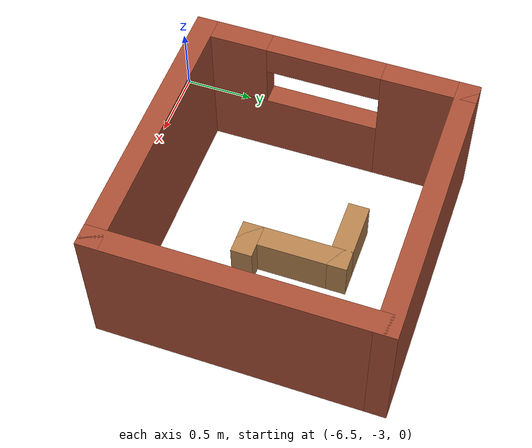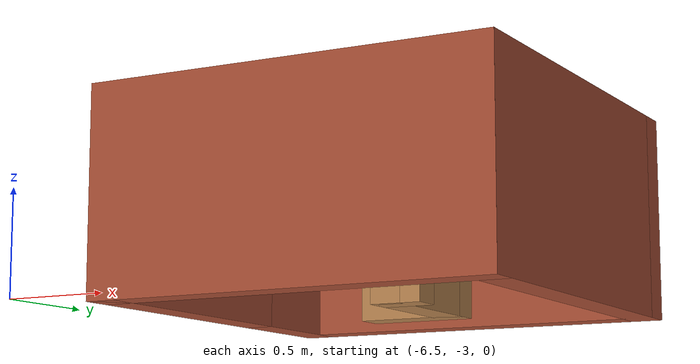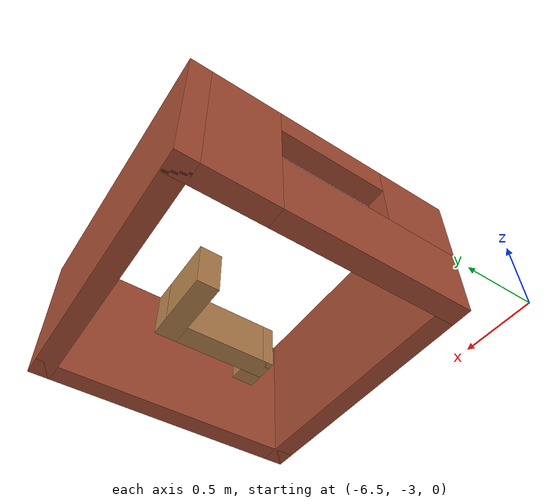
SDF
<?xml version='1.0'?>
<sdf version='1.6'>
  <model name='robot_world'>
    <pose frame=''>-5.263 -1.765 0 0 -0 0</pose>
    <link name='Wall_1'>
      <pose frame=''>-0.925 0 0 0 -0 -1.5708</pose>
      <visual name='Wall_1_Visual_0'>
        <pose frame=''>-0.675827 0 0.5 0 -0 0</pose>
        <geometry>
          <box>
            <size>0.647856 0.15 1</size>
          </box>
        </geometry>
        <material>
          <script>
            <uri>file://media/materials/scripts/gazebo.material</uri>
            <name>Gazebo/Bricks</name>
          </script>
          <ambient>1 1 1 1</ambient>
        </material>
        <meta>
          <layer>0</layer>
        </meta>
      </visual>
      <collision name='Wall_1_Collision_0'>
        <geometry>
          <box>
            <size>0.647856 0.15 1</size>
          </box>
        </geometry>
        <pose frame=''>-0.675827 0 0.5 0 -0 0</pose>
      </collision>
      <visual name='Wall_1_Visual_1'>
        <pose frame=''>0.323928 0 0.246 0 -0 0</pose>
        <geometry>
          <box>
            <size>1.35165 0.15 0.492</size>
          </box>
        </geometry>
        <material>
          <script>
            <uri>file://media/materials/scripts/gazebo.material</uri>
            <name>Gazebo/Bricks</name>
          </script>
          <ambient>1 1 1 1</ambient>
        </material>
        <meta>
          <layer>0</layer>
        </meta>
      </visual>
      <collision name='Wall_1_Collision_1'>
        <geometry>
          <box>
            <size>1.35165 0.15 0.492</size>
          </box>
        </geometry>
        <pose frame=''>0.323928 0 0.246 0 -0 0</pose>
      </collision>
      <visual name='Wall_1_Visual_2'>
        <pose frame=''>0.723928 0 0.746 0 -0 0</pose>
        <geometry>
          <box>
            <size>0.551654 0.15 0.508</size>
          </box>
        </geometry>
        <material>
          <script>
            <uri>file://media/materials/scripts/gazebo.material</uri>
            <name>Gazebo/Bricks</name>
          </script>
          <ambient>1 1 1 1</ambient>
        </material>
        <meta>
          <layer>0</layer>
        </meta>
      </visual>
      <collision name='Wall_1_Collision_2'>
        <geometry>
          <box>
            <size>0.551654 0.15 0.508</size>
          </box>
        </geometry>
        <pose frame=''>0.723928 0 0.746 0 -0 0</pose>
      </collision>
      <visual name='Wall_1_Visual_3'>
        <pose frame=''>0.048101 0 0.896 0 -0 0</pose>
        <geometry>
          <box>
            <size>0.8 0.15 0.208</size>
          </box>
        </geometry>
        <material>
          <script>
            <uri>file://media/materials/scripts/gazebo.material</uri>
            <name>Gazebo/Bricks</name>
          </script>
          <ambient>1 1 1 1</ambient>
        </material>
        <meta>
          <layer>0</layer>
        </meta>
      </visual>
      <collision name='Wall_1_Collision_3'>
        <geometry>
          <box>
            <size>0.8 0.15 0.208</size>
          </box>
        </geometry>
        <pose frame=''>0.048101 0 0.896 0 -0 0</pose>
      </collision>
    </link>
    <link name='Wall_2'>
      <collision name='Wall_2_Collision'>
        <geometry>
          <box>
            <size>2 0.15 1</size>
          </box>
        </geometry>
        <pose frame=''>0 0 0.5 0 -0 0</pose>
      </collision>
      <visual name='Wall_2_Visual'>
        <pose frame=''>0 0 0.5 0 -0 0</pose>
        <geometry>
          <box>
            <size>2 0.15 1</size>
          </box>
        </geometry>
        <material>
          <script>
            <uri>file://media/materials/scripts/gazebo.material</uri>
            <name>Gazebo/Bricks</name>
          </script>
          <ambient>1 1 1 1</ambient>
        </material>
        <meta>
          <layer>0</layer>
        </meta>
      </visual>
      <pose frame=''>0 -0.925 0 0 -0 0</pose>
    </link>
    <link name='Wall_3'>
      <collision name='Wall_3_Collision'>
        <geometry>
          <box>
            <size>1.99951 0.15 1</size>
          </box>
        </geometry>
        <pose frame=''>0 0 0.5 0 -0 0</pose>
      </collision>
      <visual name='Wall_3_Visual'>
        <pose frame=''>0 0 0.5 0 -0 0</pose>
        <geometry>
          <box>
            <size>1.99951 0.15 1</size>
          </box>
        </geometry>
        <material>
          <script>
            <uri>file://media/materials/scripts/gazebo.material</uri>
            <name>Gazebo/Bricks</name>
          </script>
          <ambient>1 1 1 1</ambient>
        </material>
        <meta>
          <layer>0</layer>
        </meta>
      </visual>
      <pose frame=''>0.925 0 0 0 -0 1.5708</pose>
    </link>
    <link name='Wall_4'>
      <collision name='Wall_4_Collision'>
        <geometry>
          <box>
            <size>2 0.15 1</size>
          </box>
        </geometry>
        <pose frame=''>0 0 0.5 0 -0 0</pose>
      </collision>
      <visual name='Wall_4_Visual'>
        <pose frame=''>0 0 0.5 0 -0 0</pose>
        <geometry>
          <box>
            <size>2 0.15 1</size>
          </box>
        </geometry>
        <material>
          <script>
            <uri>file://media/materials/scripts/gazebo.material</uri>
            <name>Gazebo/Bricks</name>
          </script>
          <ambient>1 1 1 1</ambient>
        </material>
        <meta>
          <layer>0</layer>
        </meta>
      </visual>
      <pose frame=''>0 0.925 0 0 -0 3.14159</pose>
    </link>
    <link name='Wall_6'>
      <collision name='Wall_6_Collision'>
        <geometry>
          <box>
            <size>0.526201 0.15 0.3</size>
          </box>
        </geometry>
        <pose frame=''>0 0 0.15 0 -0 0</pose>
      </collision>
      <visual name='Wall_6_Visual'>
        <pose frame=''>0 0 0.15 0 -0 0</pose>
        <geometry>
          <box>
            <size>0.526201 0.15 0.3</size>
          </box>
        </geometry>
        <material>
          <script>
            <uri>file://media/materials/scripts/gazebo.material</uri>
            <name>Gazebo/Wood</name>
          </script>
          <ambient>1 1 1 1</ambient>
        </material>
        <meta>
          <layer>0</layer>
        </meta>
      </visual>
      <pose frame=''>-0.052 0.405 0 0 -0 0</pose>
    </link>
    <link name='Wall_7'>
      <collision name='Wall_7_Collision'>
        <geometry>
          <box>
            <size>0.777673 0.15 0.3</size>
          </box>
        </geometry>
        <pose frame=''>0 0 0.15 0 -0 0</pose>
      </collision>
      <visual name='Wall_7_Visual'>
        <pose frame=''>0 0 0.15 0 -0 0</pose>
        <geometry>
          <box>
            <size>0.777673 0.15 0.3</size>
          </box>
        </geometry>
        <material>
          <script>
            <uri>file://media/materials/scripts/gazebo.material</uri>
            <name>Gazebo/Wood</name>
          </script>
          <ambient>1 1 1 1</ambient>
        </material>
        <meta>
          <layer>0</layer>
        </meta>
      </visual>
      <pose frame=''>0.1365 0.0915 0 0 -0 -1.5692</pose>
    </link>
    <link name='Wall_8'>
      <collision name='Wall_8_Collision'>
        <geometry>
          <box>
            <size>0.25 0.15 0.3</size>
          </box>
        </geometry>
        <pose frame=''>0 0 0.15 0 -0 0</pose>
      </collision>
      <visual name='Wall_8_Visual'>
        <pose frame=''>0 0 0.15 0 -0 0</pose>
        <geometry>
          <box>
            <size>0.25 0.15 0.3</size>
          </box>
        </geometry>
        <material>
          <script>
            <uri>file://media/materials/scripts/gazebo.material</uri>
            <name>Gazebo/Wood</name>
          </script>
          <ambient>1 1 1 1</ambient>
        </material>
        <meta>
          <layer>0</layer>
        </meta>
      </visual>
      <pose frame=''>0.187 -0.222 0 0 -0 0</pose>
    </link>
    <static>1</static>
  </model>
</sdf>
